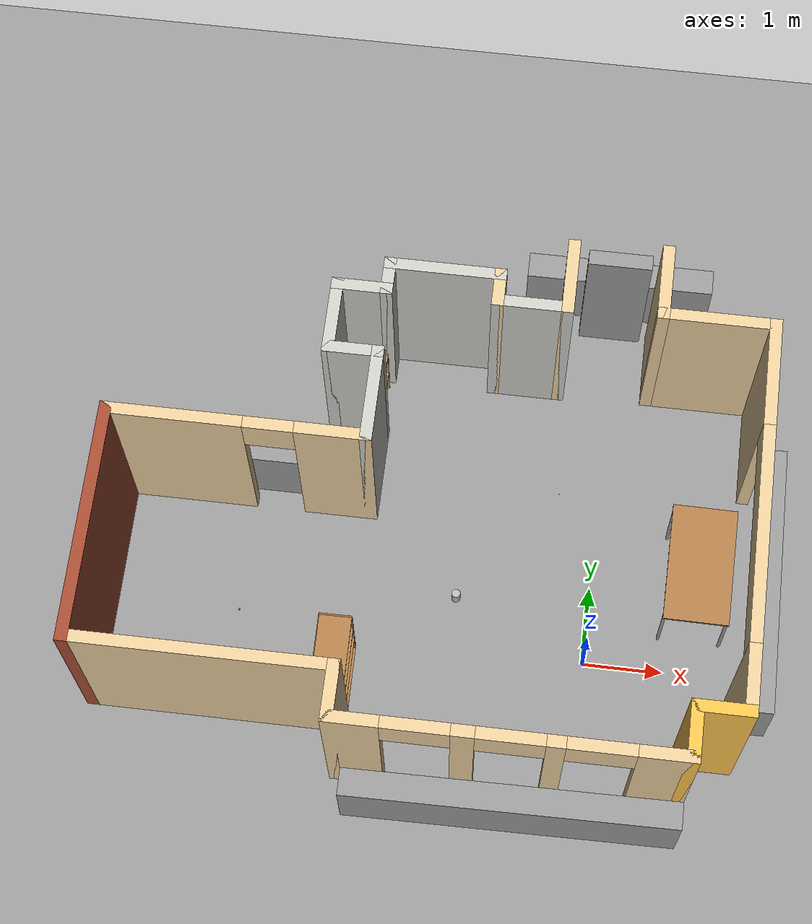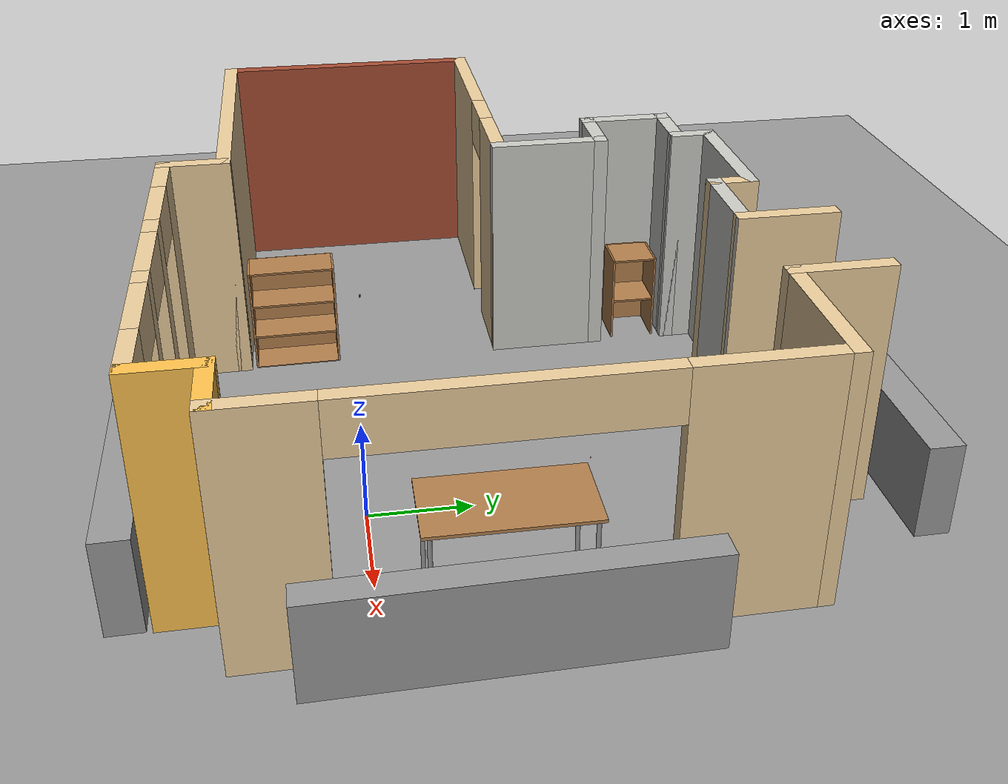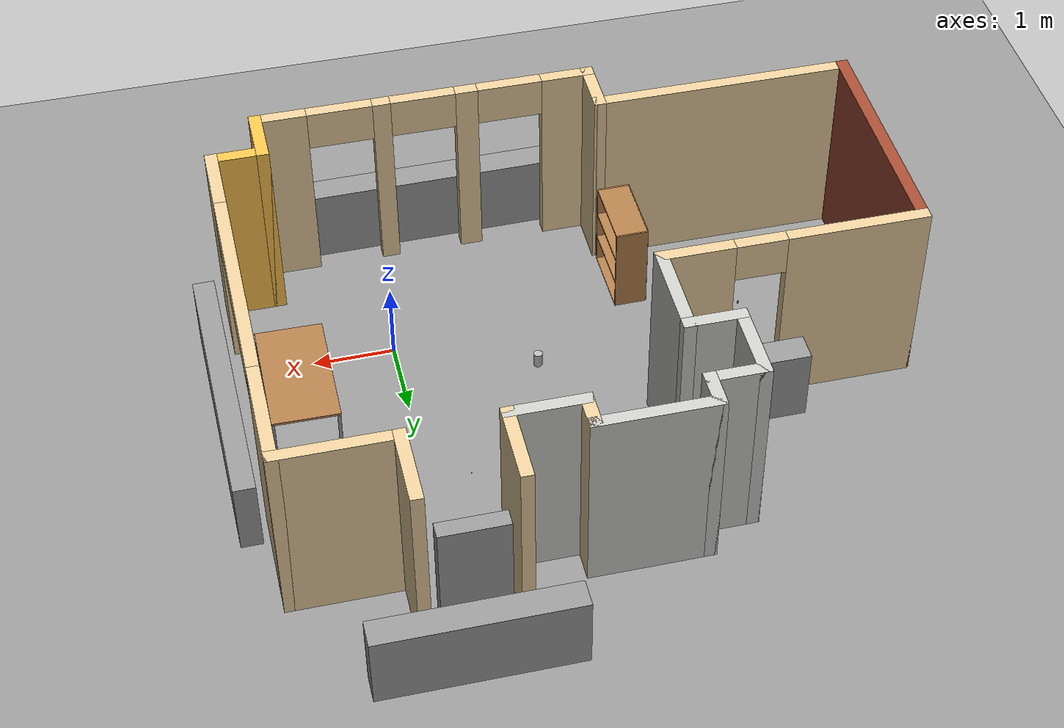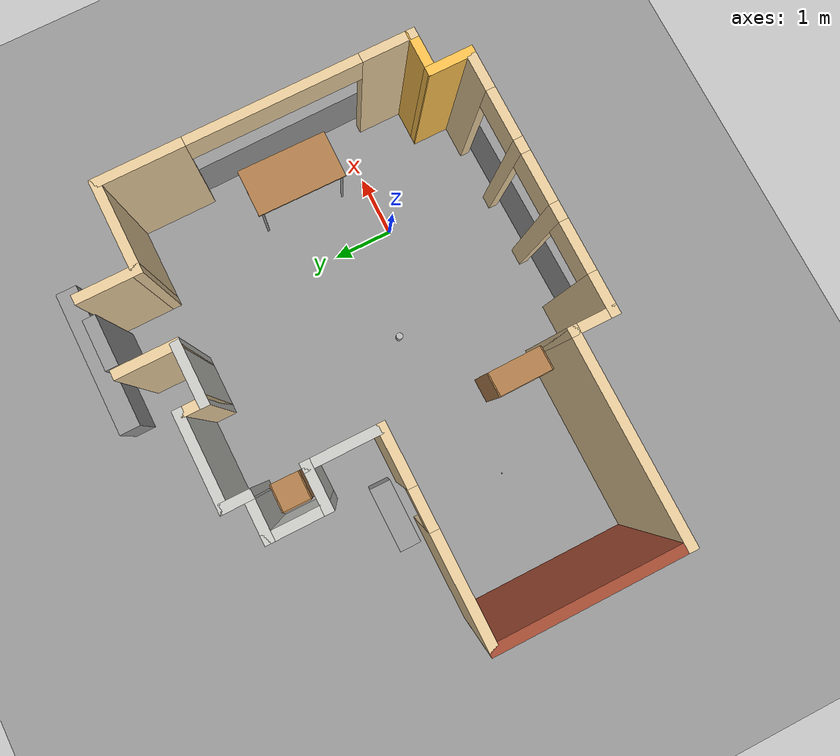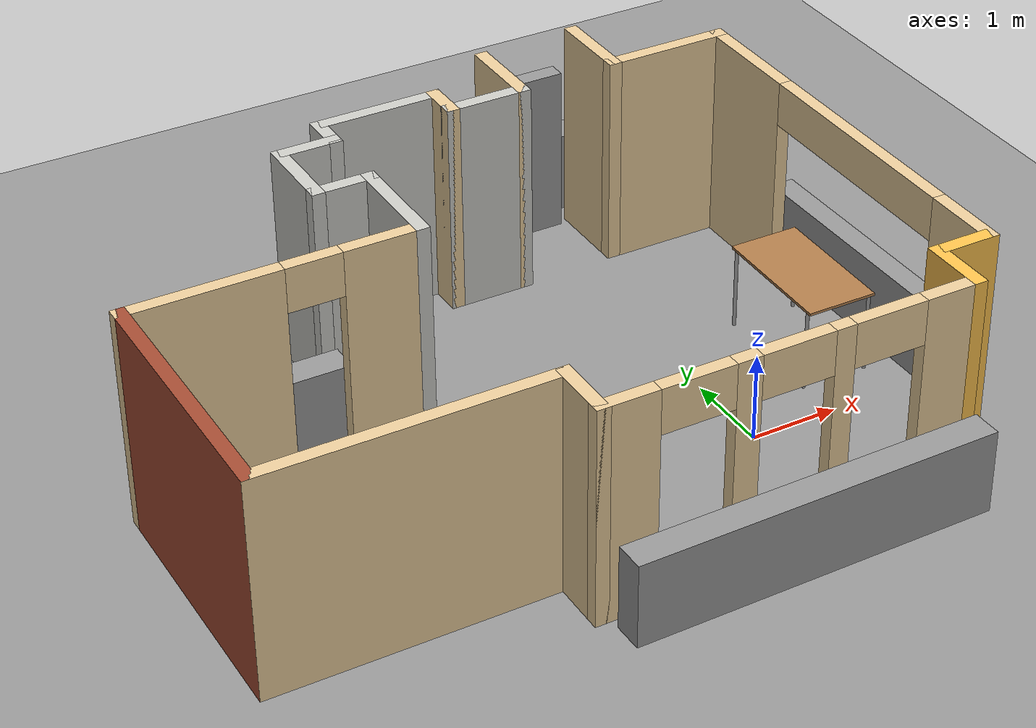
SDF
<sdf version="1.6">
 <world name="default">
  <light name="sun" type="directional">
   <pose>0 0 10 0 -0 0</pose>
   <diffuse>0.8 0.8 0.8 1</diffuse>
   <specular>0.2 0.2 0.2 1</specular>
   <attenuation>
    <range>1000</range>
    <constant>0.9</constant>
    <linear>0.01</linear>
    <quadratic>0.001</quadratic>
   </attenuation>
   <direction>-0.5 0.1 -0.9</direction>
  </light>
  <model name="ground_plane">
   <static>1</static>
   <link name="link">
    <collision name="collision">
     <geometry><plane><normal>0 0 1</normal><size>100 100</size></plane></geometry>
     <surface><friction><ode><mu>100</mu><mu2>50</mu2></ode></friction></surface>
    </collision>
    <visual name="visual">
     <cast_shadows>0</cast_shadows>
     <geometry><plane><normal>0 0 1</normal><size>100 100</size></plane></geometry>
     <material>
      <script><uri>file://media/materials/scripts/gazebo.material</uri><name>Gazebo/Grey</name></script>
     </material>
    </visual>
   </link>
  </model>
  <gravity>0 0 -9.8</gravity>
  <magnetic_field>6e-06 2.3e-05 -4.2e-05</magnetic_field>
  <atmosphere type="adiabatic"/>
  <physics name="default_physics" default="0" type="ode">
   <max_step_size>0.001</max_step_size>
   <real_time_factor>1</real_time_factor>
   <real_time_update_rate>1000</real_time_update_rate>
  </physics>
  <scene><ambient>0.4 0.4 0.4 1</ambient><background>0.7 0.7 0.7 1</background><shadows>1</shadows></scene>
  <spherical_coordinates>
   <surface_model>EARTH_WGS84</surface_model>
   <latitude_deg>0</latitude_deg>
   <longitude_deg>0</longitude_deg>
   <elevation>0</elevation>
   <heading_deg>0</heading_deg>
  </spherical_coordinates>
  <model name="UrbanStudio">
   <pose>-2.05692 1.40421 0 0 -0 0</pose>
   <link name="Door_5">
    <collision name="Door_5_Collision">
     <geometry><box><size>0.79513 0.2 2</size></box></geometry>
     <pose>0 0 1 0 -0 0</pose>
    </collision>
    <visual name="Door_5_Visual">
     <pose>0 0 1 0 -0 0</pose>
     <geometry><box><size>0.79513 0.2 2</size></box></geometry>
     <material>
      <script><uri>file://media/materials/scripts/gazebo.material</uri><name>Gazebo/Grey</name></script>
     </material>
    </visual>
    <pose>1.99566 3.24291 0 0 -0 0</pose>
   </link>
   <link name="Wall_19">
    <collision name="Wall_19_Collision">
     <geometry><box><size>3 0.15 2.5</size></box></geometry>
     <pose>0 0 1.25 0 -0 0</pose>
    </collision>
    <visual name="Wall_19_Visual">
     <pose>0 0 1.25 0 -0 0</pose>
     <geometry><box><size>3 0.15 2.5</size></box></geometry>
     <material>
      <script><uri>file://media/materials/scripts/gazebo.material</uri><name>Gazebo/Bricks</name></script>
      <ambient>0.921569 0.807843 0.615686 1</ambient>
     </material>
     <meta><layer>0</layer></meta>
    </visual>
    <pose>-3.9 -1.125 0 0 0 -1.5708</pose>
   </link>
   <link name="Wall_20">
    <collision name="Wall_20_Collision">
     <geometry><box><size>3.25 0.15 2.5</size></box></geometry>
     <pose>0 0 1.25 0 -0 0</pose>
    </collision>
    <visual name="Wall_20_Visual">
     <pose>0 0 1.25 0 -0 0</pose>
     <geometry><box><size>3.25 0.15 2.5</size></box></geometry>
     <material>
      <script><uri>file://media/materials/scripts/gazebo.material</uri><name>Gazebo/Grey</name></script>
      <ambient>0.921569 0.807843 0.615686 1</ambient>
     </material>
     <meta><layer>0</layer></meta>
    </visual>
    <pose>-2.35 -2.55 0 0 -0 0</pose>
   </link>
   <link name="Wall_21">
    <collision name="Wall_21_Collision">
     <geometry><box><size>0.75 0.15 2.5</size></box></geometry>
     <pose>0 0 1.25 0 -0 0</pose>
    </collision>
    <visual name="Wall_21_Visual">
     <pose>0 0 1.25 0 -0 0</pose>
     <geometry><box><size>0.75 0.15 2.5</size></box></geometry>
     <material>
      <script><uri>file://media/materials/scripts/gazebo.material</uri><name>Gazebo/Grey</name></script>
      <ambient>0.921569 0.807843 0.615686 1</ambient>
     </material>
     <meta><layer>0</layer></meta>
    </visual>
    <pose>-0.8 -2.85 0 0 0 -1.5708</pose>
   </link>
   <link name="Wall_24">
    <pose>1.25 -3.15 0 0 -0 0</pose>
    <visual name="Wall_24_Visual_0">
     <pose>-1.79254 0 1.25 0 -0 0</pose>
     <geometry><box><size>0.664928 0.15 2.5</size></box></geometry>
     <material>
      <script><uri>file://media/materials/scripts/gazebo.material</uri><name>Gazebo/Grey</name></script>
      <ambient>0.921569 0.807843 0.615686 1</ambient>
     </material>
     <meta><layer>0</layer></meta>
    </visual>
    <collision name="Wall_24_Collision_0">
     <geometry><box><size>0.664928 0.15 2.5</size></box></geometry>
     <pose>-1.79254 0 1.25 0 -0 0</pose>
    </collision>
    <visual name="Wall_24_Visual_1">
     <pose>-0.522613 0 1.25 0 -0 0</pose>
     <geometry><box><size>0.274917 0.15 2.5</size></box></geometry>
     <material>
      <script><uri>file://media/materials/scripts/gazebo.material</uri><name>Gazebo/Grey</name></script>
      <ambient>0.921569 0.807843 0.615686 1</ambient>
     </material>
     <meta><layer>0</layer></meta>
    </visual>
    <collision name="Wall_24_Collision_1">
     <geometry><box><size>0.274917 0.15 2.5</size></box></geometry>
     <pose>-0.522613 0 1.25 0 -0 0</pose>
    </collision>
    <visual name="Wall_24_Visual_2">
     <pose>0.526087 0 1.25 0 -0 0</pose>
     <geometry><box><size>0.222482 0.15 2.5</size></box></geometry>
     <material>
      <script><uri>file://media/materials/scripts/gazebo.material</uri><name>Gazebo/Grey</name></script>
      <ambient>0.921569 0.807843 0.615686 1</ambient>
     </material>
     <meta><layer>0</layer></meta>
    </visual>
    <collision name="Wall_24_Collision_2">
     <geometry><box><size>0.222482 0.15 2.5</size></box></geometry>
     <pose>0.526087 0 1.25 0 -0 0</pose>
    </collision>
    <visual name="Wall_24_Visual_3">
     <pose>1.78116 0 1.25 0 -0 0</pose>
     <geometry><box><size>0.687672 0.15 2.5</size></box></geometry>
     <material>
      <script><uri>file://media/materials/scripts/gazebo.material</uri><name>Gazebo/Grey</name></script>
      <ambient>0.921569 0.807843 0.615686 1</ambient>
     </material>
     <meta><layer>0</layer></meta>
    </visual>
    <collision name="Wall_24_Collision_3">
     <geometry><box><size>0.687672 0.15 2.5</size></box></geometry>
     <pose>1.78116 0 1.25 0 -0 0</pose>
    </collision>
    <visual name="Wall_24_Visual_4">
     <pose>-1.06007 0 2.25 0 -0 0</pose>
     <geometry><box><size>0.8 0.15 0.5</size></box></geometry>
     <material>
      <script><uri>file://media/materials/scripts/gazebo.material</uri><name>Gazebo/Grey</name></script>
      <ambient>0.921569 0.807843 0.615686 1</ambient>
     </material>
     <meta><layer>0</layer></meta>
    </visual>
    <collision name="Wall_24_Collision_4">
     <geometry><box><size>0.8 0.15 0.5</size></box></geometry>
     <pose>-1.06007 0 2.25 0 -0 0</pose>
    </collision>
    <visual name="Wall_24_Visual_5">
     <pose>0.014846 0 2.25 0 -0 0</pose>
     <geometry><box><size>0.8 0.15 0.5</size></box></geometry>
     <material>
      <script><uri>file://media/materials/scripts/gazebo.material</uri><name>Gazebo/Grey</name></script>
      <ambient>0.921569 0.807843 0.615686 1</ambient>
     </material>
     <meta><layer>0</layer></meta>
    </visual>
    <collision name="Wall_24_Collision_5">
     <geometry><box><size>0.8 0.15 0.5</size></box></geometry>
     <pose>0.014846 0 2.25 0 -0 0</pose>
    </collision>
    <visual name="Wall_24_Visual_6">
     <pose>1.03733 0 2.25 0 -0 0</pose>
     <geometry><box><size>0.8 0.15 0.5</size></box></geometry>
     <material>
      <script><uri>file://media/materials/scripts/gazebo.material</uri><name>Gazebo/Grey</name></script>
      <ambient>0.921569 0.807843 0.615686 1</ambient>
     </material>
     <meta><layer>0</layer></meta>
    </visual>
    <collision name="Wall_24_Collision_6">
     <geometry><box><size>0.8 0.15 0.5</size></box></geometry>
     <pose>1.03733 0 2.25 0 -0 0</pose>
    </collision>
   </link>
   <link name="Wall_25">
    <collision name="Wall_25_Collision">
     <geometry><box><size>0.75 0.15 2.5</size></box></geometry>
     <pose>0 0 1.25 0 -0 0</pose>
    </collision>
    <visual name="Wall_25_Visual">
     <pose>0 0 1.25 0 -0 0</pose>
     <geometry><box><size>0.75 0.15 2.5</size></box></geometry>
     <material>
      <script><uri>file://media/materials/scripts/gazebo.material</uri><name>Gazebo/Grey</name></script>
      <ambient>1 0.764706 0.305882 1</ambient>
     </material>
     <meta><layer>0</layer></meta>
    </visual>
    <pose>3.3 -2.85 0 0 -0 1.5708</pose>
   </link>
   <link name="Wall_26">
    <collision name="Wall_26_Collision">
     <geometry><box><size>0.75 0.15 2.5</size></box></geometry>
     <pose>0 0 1.25 0 -0 0</pose>
    </collision>
    <visual name="Wall_26_Visual">
     <pose>0 0 1.25 0 -0 0</pose>
     <geometry><box><size>0.75 0.15 2.5</size></box></geometry>
     <material>
      <script><uri>file://media/materials/scripts/gazebo.material</uri><name>Gazebo/Grey</name></script>
      <ambient>1 0.764706 0.305882 1</ambient>
     </material>
     <meta><layer>0</layer></meta>
    </visual>
    <pose>3.6 -2.55 0 0 -0 0</pose>
   </link>
   <link name="Wall_27">
    <pose>3.9 -0.125 0 0 -0 1.5708</pose>
    <visual name="Wall_27_Visual_0">
     <pose>-2.06007 0 1.25 0 -0 0</pose>
     <geometry><box><size>0.879852 0.15 2.5</size></box></geometry>
     <material>
      <script><uri>file://media/materials/scripts/gazebo.material</uri><name>Gazebo/Grey</name></script>
      <ambient>0.921569 0.807843 0.615686 1</ambient>
     </material>
     <meta><layer>0</layer></meta>
    </visual>
    <collision name="Wall_27_Collision_0">
     <geometry><box><size>0.879852 0.15 2.5</size></box></geometry>
     <pose>-2.06007 0 1.25 0 -0 0</pose>
    </collision>
    <visual name="Wall_27_Visual_1">
     <pose>1.80014 0 1.25 0 -0 0</pose>
     <geometry><box><size>1.39972 0.15 2.5</size></box></geometry>
     <material>
      <script><uri>file://media/materials/scripts/gazebo.material</uri><name>Gazebo/Grey</name></script>
      <ambient>0.921569 0.807843 0.615686 1</ambient>
     </material>
     <meta><layer>0</layer></meta>
    </visual>
    <collision name="Wall_27_Collision_1">
     <geometry><box><size>1.39972 0.15 2.5</size></box></geometry>
     <pose>1.80014 0 1.25 0 -0 0</pose>
    </collision>
    <visual name="Wall_27_Visual_2">
     <pose>-0.259932 0 2.25 0 -0 0</pose>
     <geometry><box><size>2.72043 0.15 0.5</size></box></geometry>
     <material>
      <script><uri>file://media/materials/scripts/gazebo.material</uri><name>Gazebo/Grey</name></script>
      <ambient>0.921569 0.807843 0.615686 1</ambient>
     </material>
     <meta><layer>0</layer></meta>
    </visual>
    <collision name="Wall_27_Collision_2">
     <geometry><box><size>2.72043 0.15 0.5</size></box></geometry>
     <pose>-0.259932 0 2.25 0 -0 0</pose>
    </collision>
   </link>
   <link name="Wall_28">
    <collision name="Wall_28_Collision">
     <geometry><box><size>1.5 0.15 2.5</size></box></geometry>
     <pose>0 0 1.25 0 -0 0</pose>
    </collision>
    <visual name="Wall_28_Visual">
     <pose>0 0 1.25 0 -0 0</pose>
     <geometry><box><size>1.5 0.15 2.5</size></box></geometry>
     <material>
      <script><uri>file://media/materials/scripts/gazebo.material</uri><name>Gazebo/Grey</name></script>
      <ambient>0.921569 0.807843 0.615686 1</ambient>
     </material>
     <meta><layer>0</layer></meta>
    </visual>
    <pose>3.225 2.3 0 0 -0 3.14159</pose>
   </link>
   <link name="Wall_29">
    <collision name="Wall_29_Collision">
     <geometry><box><size>1 0.15 2.5</size></box></geometry>
     <pose>0 0 1.25 0 -0 0</pose>
    </collision>
    <visual name="Wall_29_Visual">
     <pose>0 0 1.25 0 -0 0</pose>
     <geometry><box><size>1 0.15 2.5</size></box></geometry>
     <material>
      <script><uri>file://media/materials/scripts/gazebo.material</uri><name>Gazebo/Grey</name></script>
      <ambient>0.921569 0.807843 0.615686 1</ambient>
     </material>
     <meta><layer>0</layer></meta>
    </visual>
    <pose>2.55 2.725 0 0 -0 1.5708</pose>
   </link>
   <link name="Wall_42">
    <pose>-2.35 0.3 0 0 -0 0</pose>
    <visual name="Wall_42_Visual_0">
     <pose>-0.771993 0 1.25 0 -0 0</pose>
     <geometry><box><size>1.70601 0.15 2.5</size></box></geometry>
     <material>
      <script><uri>file://media/materials/scripts/gazebo.material</uri><name>Gazebo/Grey</name></script>
      <ambient>0.921569 0.807843 0.615686 1</ambient>
     </material>
     <meta><layer>0</layer></meta>
    </visual>
    <collision name="Wall_42_Collision_0">
     <geometry><box><size>1.70601 0.15 2.5</size></box></geometry>
     <pose>-0.771993 0 1.25 0 -0 0</pose>
    </collision>
    <visual name="Wall_42_Visual_1">
     <pose>1.15881 0 1.25 0 -0 0</pose>
     <geometry><box><size>0.932379 0.15 2.5</size></box></geometry>
     <material>
      <script><uri>file://media/materials/scripts/gazebo.material</uri><name>Gazebo/Grey</name></script>
      <ambient>0.921569 0.807843 0.615686 1</ambient>
     </material>
     <meta><layer>0</layer></meta>
    </visual>
    <collision name="Wall_42_Collision_1">
     <geometry><box><size>0.932379 0.15 2.5</size></box></geometry>
     <pose>1.15881 0 1.25 0 -0 0</pose>
    </collision>
    <visual name="Wall_42_Visual_2">
     <pose>0.386817 0 2.25 0 -0 0</pose>
     <geometry><box><size>0.611608 0.15 0.5</size></box></geometry>
     <material>
      <script><uri>file://media/materials/scripts/gazebo.material</uri><name>Gazebo/Grey</name></script>
      <ambient>0.921569 0.807843 0.615686 1</ambient>
     </material>
     <meta><layer>0</layer></meta>
    </visual>
    <collision name="Wall_42_Collision_2">
     <geometry><box><size>0.611608 0.15 0.5</size></box></geometry>
     <pose>0.386817 0 2.25 0 -0 0</pose>
    </collision>
   </link>
   <link name="Wall_44">
    <collision name="Wall_44_Collision">
     <geometry><box><size>1.25 0.15 2.5</size></box></geometry>
     <pose>0 0 1.25 0 -0 0</pose>
    </collision>
    <visual name="Wall_44_Visual">
     <pose>0 0 1.25 0 -0 0</pose>
     <geometry><box><size>1.25 0.15 2.5</size></box></geometry>
     <material>
      <script><uri>file://media/materials/scripts/gazebo.material</uri><name>Gazebo/CeilingTiled</name></script>
      <ambient>0.921569 0.807843 0.615686 1</ambient>
     </material>
     <meta><layer>0</layer></meta>
    </visual>
    <pose>-0.8 0.85 0 0 -0 1.5708</pose>
   </link>
   <link name="Wall_45">
    <collision name="Wall_45_Collision">
     <geometry><box><size>0.75 0.15 2.5</size></box></geometry>
     <pose>0 0 1.25 0 -0 0</pose>
    </collision>
    <visual name="Wall_45_Visual">
     <pose>0 0 1.25 0 -0 0</pose>
     <geometry><box><size>0.75 0.15 2.5</size></box></geometry>
     <material>
      <script><uri>file://media/materials/scripts/gazebo.material</uri><name>Gazebo/CeilingTiled</name></script>
      <ambient>0.921569 0.807843 0.615686 1</ambient>
     </material>
     <meta><layer>0</layer></meta>
    </visual>
    <pose>-1.1 1.4 0 0 -0 3.14159</pose>
   </link>
   <link name="Wall_46">
    <collision name="Wall_46_Collision">
     <geometry><box><size>1 0.15 2.5</size></box></geometry>
     <pose>0 0 1.25 0 -0 0</pose>
    </collision>
    <visual name="Wall_46_Visual">
     <pose>0 0 1.25 0 -0 0</pose>
     <geometry><box><size>1 0.15 2.5</size></box></geometry>
     <material>
      <script><uri>file://media/materials/scripts/gazebo.material</uri><name>Gazebo/CeilingTiled</name></script>
      <ambient>0.921569 0.807843 0.615686 1</ambient>
     </material>
     <meta><layer>0</layer></meta>
    </visual>
    <pose>-1.4 1.825 0 0 -0 1.5708</pose>
   </link>
   <link name="Wall_48">
    <collision name="Wall_48_Collision">
     <geometry><box><size>0.75 0.15 2.5</size></box></geometry>
     <pose>0 0 1.25 0 -0 0</pose>
    </collision>
    <visual name="Wall_48_Visual">
     <pose>0 0 1.25 0 -0 0</pose>
     <geometry><box><size>0.75 0.15 2.5</size></box></geometry>
     <material>
      <script><uri>file://media/materials/scripts/gazebo.material</uri><name>Gazebo/CeilingTiled</name></script>
      <ambient>0.921569 0.807843 0.615686 1</ambient>
     </material>
     <meta><layer>0</layer></meta>
    </visual>
    <pose>-1.1 2.25 0 0 -0 0</pose>
   </link>
   <link name="Wall_51">
    <collision name="Wall_51_Collision">
     <geometry><box><size>0.5 0.15 2.5</size></box></geometry>
     <pose>0 0 1.25 0 -0 0</pose>
    </collision>
    <visual name="Wall_51_Visual">
     <pose>0 0 1.25 0 -0 0</pose>
     <geometry><box><size>0.5 0.15 2.5</size></box></geometry>
     <material>
      <script><uri>file://media/materials/scripts/gazebo.material</uri><name>Gazebo/CeilingTiled</name></script>
      <ambient>0.921569 0.807843 0.615686 1</ambient>
     </material>
     <meta><layer>0</layer></meta>
    </visual>
    <pose>-0.8 2.425 0 0 -0 1.5708</pose>
   </link>
   <link name="Wall_52">
    <collision name="Wall_52_Collision">
     <geometry><box><size>1.5 0.15 2.5</size></box></geometry>
     <pose>0 0 1.25 0 -0 0</pose>
    </collision>
    <visual name="Wall_52_Visual">
     <pose>0 0 1.25 0 -0 0</pose>
     <geometry><box><size>1.5 0.15 2.5</size></box></geometry>
     <material>
      <script><uri>file://media/materials/scripts/gazebo.material</uri><name>Gazebo/CeilingTiled</name></script>
      <ambient>0.921569 0.807843 0.615686 1</ambient>
     </material>
     <meta><layer>0</layer></meta>
    </visual>
    <pose>-0.125 2.6 0 0 -0 0</pose>
   </link>
   <link name="Wall_53">
    <collision name="Wall_53_Collision">
     <geometry><box><size>0.5 0.15 2.5</size></box></geometry>
     <pose>0 0 1.25 0 -0 0</pose>
    </collision>
    <visual name="Wall_53_Visual">
     <pose>0 0 1.25 0 -0 0</pose>
     <geometry><box><size>0.5 0.15 2.5</size></box></geometry>
     <material>
      <script><uri>file://media/materials/scripts/gazebo.material</uri><name>Gazebo/Grey</name></script>
      <ambient>0.921569 0.807843 0.615686 1</ambient>
     </material>
     <meta><layer>0</layer></meta>
    </visual>
    <pose>0.55 2.425 0 0 0 -1.5708</pose>
   </link>
   <link name="Wall_54">
    <collision name="Wall_54_Collision">
     <geometry><box><size>1 0.15 2.5</size></box></geometry>
     <pose>0 0 1.25 0 -0 0</pose>
    </collision>
    <visual name="Wall_54_Visual">
     <pose>0 0 1.25 0 -0 0</pose>
     <geometry><box><size>1 0.15 2.5</size></box></geometry>
     <material>
      <script><uri>file://media/materials/scripts/gazebo.material</uri><name>Gazebo/CeilingTiled</name></script>
      <ambient>0.921569 0.807843 0.615686 1</ambient>
     </material>
     <meta><layer>0</layer></meta>
    </visual>
    <pose>0.975 2.25 0 0 -0 0</pose>
   </link>
   <link name="Wall_55">
    <collision name="Wall_55_Collision">
     <geometry><box><size>1 0.15 2.5</size></box></geometry>
     <pose>0 0 1.25 0 -0 0</pose>
    </collision>
    <visual name="Wall_55_Visual">
     <pose>0 0 1.25 0 -0 0</pose>
     <geometry><box><size>1 0.15 2.5</size></box></geometry>
     <material>
      <script><uri>file://media/materials/scripts/gazebo.material</uri><name>Gazebo/Grey</name></script>
      <ambient>0.921569 0.807843 0.615686 1</ambient>
     </material>
     <meta><layer>0</layer></meta>
    </visual>
    <pose>1.4 2.675 0 0 -0 1.5708</pose>
   </link>
   <static>1</static>
  </model>
  <model name="ground_plane_0">
   <static>1</static>
   <link name="link">
    <collision name="collision">
     <geometry><plane><normal>0 0 1</normal><size>100 100</size></plane></geometry>
     <surface>
      <contact><collide_bitmask>65535</collide_bitmask></contact>
      <friction><ode><mu>100</mu><mu2>50</mu2></ode></friction>
     </surface>
    </collision>
    <visual name="visual">
     <cast_shadows>0</cast_shadows>
     <geometry><plane><normal>0 0 1</normal><size>100 100</size></plane></geometry>
     <material>
      <script><uri>file://media/materials/scripts/gazebo.material</uri><name>Gazebo/Grey</name></script>
     </material>
    </visual>
   </link>
   <pose>0.870453 0.262536 0 0 -0 0</pose>
  </model>
  <model name="table">
   <static>1</static>
   <link name="link">
    <collision name="surface">
     <pose>0 0 1 0 -0 0</pose>
     <geometry><box><size>1.5 0.8 0.03</size></box></geometry>
     <surface><friction><ode><mu>0.6</mu><mu2>0.6</mu2></ode></friction></surface>
    </collision>
    <visual name="visual1">
     <pose>0 0 1 0 -0 0</pose>
     <geometry><box><size>1.5 0.8 0.03</size></box></geometry>
     <material>
      <script><uri>file://media/materials/scripts/gazebo.material</uri><name>Gazebo/Wood</name></script>
     </material>
    </visual>
    <collision name="front_left_leg">
     <pose>0.68 0.38 0.5 0 -0 0</pose>
     <geometry><cylinder><radius>0.02</radius><length>1</length></cylinder></geometry>
    </collision>
    <visual name="front_left_leg">
     <pose>0.68 0.38 0.5 0 -0 0</pose>
     <geometry><cylinder><radius>0.02</radius><length>1</length></cylinder></geometry>
     <material>
      <script><uri>file://media/materials/scripts/gazebo.material</uri><name>Gazebo/Grey</name></script>
     </material>
    </visual>
    <collision name="front_right_leg">
     <pose>0.68 -0.38 0.5 0 -0 0</pose>
     <geometry><cylinder><radius>0.02</radius><length>1</length></cylinder></geometry>
    </collision>
    <visual name="front_right_leg">
     <pose>0.68 -0.38 0.5 0 -0 0</pose>
     <geometry><cylinder><radius>0.02</radius><length>1</length></cylinder></geometry>
     <material>
      <script><uri>file://media/materials/scripts/gazebo.material</uri><name>Gazebo/Grey</name></script>
     </material>
    </visual>
    <collision name="back_right_leg">
     <pose>-0.68 -0.38 0.5 0 -0 0</pose>
     <geometry><cylinder><radius>0.02</radius><length>1</length></cylinder></geometry>
    </collision>
    <visual name="back_right_leg">
     <pose>-0.68 -0.38 0.5 0 -0 0</pose>
     <geometry><cylinder><radius>0.02</radius><length>1</length></cylinder></geometry>
     <material>
      <script><uri>file://media/materials/scripts/gazebo.material</uri><name>Gazebo/Grey</name></script>
     </material>
    </visual>
    <collision name="back_left_leg">
     <pose>-0.68 0.38 0.5 0 -0 0</pose>
     <geometry><cylinder><radius>0.02</radius><length>1</length></cylinder></geometry>
    </collision>
    <visual name="back_left_leg">
     <pose>-0.68 0.38 0.5 0 -0 0</pose>
     <geometry><cylinder><radius>0.02</radius><length>1</length></cylinder></geometry>
     <material>
      <script><uri>file://media/materials/scripts/gazebo.material</uri><name>Gazebo/Grey</name></script>
     </material>
    </visual>
   </link>
   <pose>1.29513 1.11074 0.001723 -0.002851 -3.1e-05 1.55977</pose>
  </model>
  <model name="bookshelf">
   <static>1</static>
   <link name="link">
    <inertial><mass>1</mass></inertial>
    <collision name="back">
     <pose>0 0.005 0.6 0 -0 0</pose>
     <geometry><box><size>0.9 0.01 1.2</size></box></geometry>
    </collision>
    <visual name="visual1">
     <pose>0 0.005 0.6 0 -0 0</pose>
     <geometry><box><size>0.9 0.01 1.2</size></box></geometry>
     <material>
      <script><uri>file://media/materials/scripts/gazebo.material</uri><name>Gazebo/Wood</name></script>
     </material>
    </visual>
    <collision name="left_side">
     <pose>0.45 -0.195 0.6 0 -0 0</pose>
     <geometry><box><size>0.02 0.4 1.2</size></box></geometry>
    </collision>
    <visual name="visual2">
     <pose>0.45 -0.195 0.6 0 -0 0</pose>
     <geometry><box><size>0.02 0.4 1.2</size></box></geometry>
     <material>
      <script><uri>file://media/materials/scripts/gazebo.material</uri><name>Gazebo/Wood</name></script>
     </material>
    </visual>
    <collision name="right_side">
     <pose>-0.45 -0.195 0.6 0 -0 0</pose>
     <geometry><box><size>0.02 0.4 1.2</size></box></geometry>
    </collision>
    <visual name="visual3">
     <pose>-0.45 -0.195 0.6 0 -0 0</pose>
     <geometry><box><size>0.02 0.4 1.2</size></box></geometry>
     <material>
      <script><uri>file://media/materials/scripts/gazebo.material</uri><name>Gazebo/Wood</name></script>
     </material>
    </visual>
    <collision name="bottom">
     <pose>0 -0.195 0.03 0 -0 0</pose>
     <geometry><box><size>0.88 0.4 0.06</size></box></geometry>
    </collision>
    <visual name="visual4">
     <pose>0 -0.195 0.03 0 -0 0</pose>
     <geometry><box><size>0.88 0.4 0.06</size></box></geometry>
     <material>
      <script><uri>file://media/materials/scripts/gazebo.material</uri><name>Gazebo/Wood</name></script>
     </material>
    </visual>
    <collision name="top">
     <pose>0 -0.195 1.19 0 -0 0</pose>
     <geometry><box><size>0.88 0.4 0.02</size></box></geometry>
    </collision>
    <visual name="visual5">
     <pose>0 -0.195 1.19 0 -0 0</pose>
     <geometry><box><size>0.88 0.4 0.02</size></box></geometry>
     <material>
      <script><uri>file://media/materials/scripts/gazebo.material</uri><name>Gazebo/Wood</name></script>
     </material>
    </visual>
    <collision name="low_shelf">
     <pose>0 -0.195 0.43 0 -0 0</pose>
     <geometry><box><size>0.88 0.4 0.02</size></box></geometry>
    </collision>
    <visual name="visual6">
     <pose>0 -0.195 0.43 0 -0 0</pose>
     <geometry><box><size>0.88 0.4 0.02</size></box></geometry>
     <material>
      <script><uri>file://media/materials/scripts/gazebo.material</uri><name>Gazebo/Wood</name></script>
     </material>
    </visual>
    <collision name="high_shelf">
     <pose>0 -0.195 0.8 0 -0 0</pose>
     <geometry><box><size>0.88 0.4 0.02</size></box></geometry>
    </collision>
    <visual name="visual7">
     <pose>0 -0.195 0.8 0 -0 0</pose>
     <geometry><box><size>0.88 0.4 0.02</size></box></geometry>
     <material>
      <script><uri>file://media/materials/scripts/gazebo.material</uri><name>Gazebo/Wood</name></script>
     </material>
    </visual>
   </link>
   <pose>-3.22278 -0.567812 0 0 -0 1.58217</pose>
  </model>
  <model name="beer">
   <link name="link">
    <pose>0 0 0.115 0 -0 0</pose>
    <inertial>
     <mass>0.39</mass>
     <inertia><ixx>0.00058</ixx><ixy>0</ixy><ixz>0</ixz><iyy>0.00058</iyy><iyz>0</iyz><izz>0.00019</izz></inertia>
    </inertial>
    <collision name="collision">
     <geometry><cylinder><radius>0.055</radius><length>0.23</length></cylinder></geometry>
    </collision>
    <visual name="visual">
     <geometry><cylinder><radius>0.055</radius><length>0.23</length></cylinder></geometry>
     <material>
      <script>
       <uri>model://beer/materials/scripts</uri>
       <uri>model://beer/materials/textures</uri>
       <name>Beer/Diffuse</name>
      </script>
     </material>
    </visual>
   </link>
   <pose>-1.66292 0.676531 -8e-06 0 -0 1e-05</pose>
  </model>
  <model name="cabinet">
   <static>1</static>
   <link name="cabinet_bottom_plate">
    <inertial>
     <pose>0 0 -1 0 -0 0</pose>
     <inertia><ixx>2.05</ixx><ixy>0</ixy><ixz>0</ixz><iyy>2.05</iyy><iyz>0</iyz><izz>2.05</izz></inertia>
     <mass>25</mass>
    </inertial>
    <collision name="cabinet_bottom_plate_geom">
     <pose>0 0 0.01 0 -0 0</pose>
     <geometry><box><size>0.45 0.45 0.02</size></box></geometry>
    </collision>
    <visual name="cabinet_bottom_plate_geom_visual">
     <pose>0 0 0.01 0 -0 0</pose>
     <geometry><box><size>0.45 0.45 0.02</size></box></geometry>
     <material>
      <script><uri>file://media/materials/scripts/gazebo.material</uri><name>Gazebo/Wood</name></script>
     </material>
    </visual>
    <collision name="cabinet_bottom_plate_geom_cabinet_back_plate">
     <pose>0.235 0 0.51 0 -0 0</pose>
     <geometry><box><size>0.02 0.45 1.02</size></box></geometry>
    </collision>
    <visual name="cabinet_bottom_plate_geom_cabinet_back_plate_visual">
     <pose>0.235 0 0.51 0 -0 0</pose>
     <geometry><box><size>0.02 0.45 1.02</size></box></geometry>
     <material>
      <script><uri>file://media/materials/scripts/gazebo.material</uri><name>Gazebo/Wood</name></script>
     </material>
    </visual>
    <collision name="cabinet_bottom_plate_geom_cabinet_left_plate">
     <pose>0 0.235 0.51 0 -0 0</pose>
     <geometry><box><size>0.45 0.02 1.02</size></box></geometry>
    </collision>
    <visual name="cabinet_bottom_plate_geom_cabinet_left_plate_visual">
     <pose>0 0.235 0.51 0 -0 0</pose>
     <geometry><box><size>0.45 0.02 1.02</size></box></geometry>
     <material>
      <script><uri>file://media/materials/scripts/gazebo.material</uri><name>Gazebo/Wood</name></script>
     </material>
    </visual>
    <collision name="cabinet_bottom_plate_geom_cabinet_middle_plate">
     <pose>0 0 0.51 0 -0 0</pose>
     <geometry><box><size>0.45 0.45 0.02</size></box></geometry>
    </collision>
    <visual name="cabinet_bottom_plate_geom_cabinet_middle_plate_visual">
     <pose>0 0 0.51 0 -0 0</pose>
     <geometry><box><size>0.45 0.45 0.02</size></box></geometry>
     <material>
      <script><uri>file://media/materials/scripts/gazebo.material</uri><name>Gazebo/Wood</name></script>
     </material>
    </visual>
    <collision name="cabinet_bottom_plate_geom_cabinet_right_plate">
     <pose>0 -0.235 0.51 0 -0 0</pose>
     <geometry><box><size>0.45 0.02 1.02</size></box></geometry>
    </collision>
    <visual name="cabinet_bottom_plate_geom_cabinet_right_plate_visual">
     <pose>0 -0.235 0.51 0 -0 0</pose>
     <geometry><box><size>0.45 0.02 1.02</size></box></geometry>
     <material>
      <script><uri>file://media/materials/scripts/gazebo.material</uri><name>Gazebo/Wood</name></script>
     </material>
    </visual>
    <collision name="cabinet_bottom_plate_geom_cabinet_top_plate">
     <pose>0 0 1.01 0 -0 0</pose>
     <geometry><box><size>0.45 0.45 0.02</size></box></geometry>
    </collision>
    <visual name="cabinet_bottom_plate_geom_cabinet_top_plate_visual">
     <pose>0 0 1.01 0 -0 0</pose>
     <geometry><box><size>0.45 0.45 0.02</size></box></geometry>
     <material>
      <script><uri>file://media/materials/scripts/gazebo.material</uri><name>Gazebo/Wood</name></script>
     </material>
    </visual>
   </link>
   <pose>-3.08061 3.26434 0 0 -0 3.13064</pose>
  </model>
  <model name="unit_box">
   <pose>-4.08254 2.0446 0.5 0 -0 0.00017</pose>
   <link name="link">
    <inertial>
     <mass>1</mass>
     <inertia>
      <ixx>0.166667</ixx>
      <ixy>0</ixy>
      <ixz>0</ixz>
      <iyy>0.166667</iyy>
      <iyz>0</iyz>
      <izz>0.166667</izz>
     </inertia>
    </inertial>
    <collision name="collision"><geometry><box><size>1 0.33747 1</size></box></geometry></collision>
    <visual name="visual">
     <geometry><box><size>1 0.33747 1</size></box></geometry>
     <material>
      <script><name>Gazebo/Grey</name><uri>file://media/materials/scripts/gazebo.material</uri></script>
     </material>
    </visual>
   </link>
  </model>
  <model name="unit_box_clone">
   <pose>-0.720868 -2.06712 0.499213 1e-05 0.00039 0.011186</pose>
   <link name="link">
    <inertial>
     <mass>1</mass>
     <inertia>
      <ixx>0.166667</ixx>
      <ixy>0</ixy>
      <ixz>0</ixz>
      <iyy>0.166667</iyy>
      <iyz>0</iyz>
      <izz>0.166667</izz>
     </inertia>
    </inertial>
    <collision name="collision"><geometry><box><size>4.05008 0.33747 1</size></box></geometry></collision>
    <visual name="visual">
     <geometry><box><size>4.05008 0.33747 1</size></box></geometry>
     <material>
      <script><name>Gazebo/Grey</name><uri>file://media/materials/scripts/gazebo.material</uri></script>
     </material>
    </visual>
   </link>
  </model>
  <model name="unit_box_0">
   <pose>2.14549 1.03118 0.499653 -0.000203 7e-06 0.009347</pose>
   <link name="link">
    <inertial>
     <mass>1</mass>
     <inertia>
      <ixx>0.166667</ixx>
      <ixy>0</ixy>
      <ixz>0</ixz>
      <iyy>0.166667</iyy>
      <iyz>0</iyz>
      <izz>0.166667</izz>
     </inertia>
    </inertial>
    <collision name="collision"><geometry><box><size>0.262257 3.42943 1</size></box></geometry></collision>
    <visual name="visual">
     <geometry><box><size>0.262257 3.42943 1</size></box></geometry>
     <material>
      <script><name>Gazebo/Grey</name><uri>file://media/materials/scripts/gazebo.material</uri></script>
     </material>
    </visual>
   </link>
  </model>
  <model name="unit_box_clone_clone">
   <pose>-0.013787 5.01468 0.499953 -1e-06 3.9e-05 -0.000824</pose>
   <link name="link">
    <inertial>
     <mass>1</mass>
     <inertia>
      <ixx>0.166667</ixx>
      <ixy>0</ixy>
      <ixz>0</ixz>
      <iyy>0.166667</iyy>
      <iyz>0</iyz>
      <izz>0.166667</izz>
     </inertia>
    </inertial>
    <collision name="collision"><geometry><box><size>2.3818 0.33747 1</size></box></geometry></collision>
    <visual name="visual">
     <geometry><box><size>2.3818 0.33747 1</size></box></geometry>
     <material>
      <script><name>Gazebo/Grey</name><uri>file://media/materials/scripts/gazebo.material</uri></script>
     </material>
    </visual>
   </link>
  </model>
  <model name="metal_peg_board">
   <link name="wooden_board::base">
    <pose>0 0 0.00523 0 -0 0</pose>
    <inertial>
     <mass>0.2765</mass>
     <inertia>
      <ixx>0.0025148</ixx>
      <ixy>0</ixy>
      <ixz>0</ixz>
      <iyy>0.00024037</iyy>
      <iyz>0</iyz>
      <izz>0.00275013</izz>
     </inertia>
    </inertial>
    <collision name="collision">
     <geometry><box><size>0.1016 0.3302 0.01046</size></box></geometry>
     <surface>
      <contact>
       <poissons_ratio>0.347</poissons_ratio>
       <elastic_modulus>8.8e+09</elastic_modulus>
       <ode><kp>100000</kp><kd>100</kd><max_vel>100</max_vel><min_depth>0.001</min_depth></ode>
      </contact>
      <friction>
       <torsional>
        <coefficient>1</coefficient>
        <use_patch_radius>0</use_patch_radius>
        <surface_radius>0.01</surface_radius>
       </torsional>
      </friction>
     </surface>
    </collision>
    <visual name="visual">
     <geometry><box><size>0.1016 0.3302 0.01046</size></box></geometry>
     <material>
      <script><uri>file://media/materials/scripts/gazebo.material</uri><name>Gazebo/Wood</name></script>
     </material>
    </visual>
    <visual name="tee_nut_1">
     <pose>0 -0.116 0 0 -0 0</pose>
     <geometry><cylinder><radius>0.00635</radius><length>0.0105646</length></cylinder></geometry>
     <material>
      <script><uri>file://media/materials/scripts/gazebo.material</uri><name>Gazebo/Grey</name></script>
     </material>
    </visual>
    <visual name="tee_nut_2">
     <pose>0 -0.038 0 0 -0 0</pose>
     <geometry><cylinder><radius>0.00635</radius><length>0.0105646</length></cylinder></geometry>
     <material>
      <script><uri>file://media/materials/scripts/gazebo.material</uri><name>Gazebo/Grey</name></script>
     </material>
    </visual>
    <visual name="tee_nut_3">
     <pose>0 0.038 0 0 -0 0</pose>
     <geometry><cylinder><radius>0.00635</radius><length>0.0105646</length></cylinder></geometry>
     <material>
      <script><uri>file://media/materials/scripts/gazebo.material</uri><name>Gazebo/Grey</name></script>
     </material>
    </visual>
    <visual name="tee_nut_4">
     <pose>0 0.116 0 0 -0 0</pose>
     <geometry><cylinder><radius>0.00635</radius><length>0.0105646</length></cylinder></geometry>
     <material>
      <script><uri>file://media/materials/scripts/gazebo.material</uri><name>Gazebo/Grey</name></script>
     </material>
    </visual>
   </link>
   <link name="peg::link">
    <pose>0 0.116 0.031 0 -0 0</pose>
    <inertial>
     <mass>0.0121</mass>
     <inertia>
      <ixx>3.90898e-06</ixx>
      <ixy>0</ixy>
      <ixz>0</ixz>
      <iyy>3.90898e-06</iyy>
      <iyz>0</iyz>
      <izz>6.58845e-08</izz>
     </inertia>
    </inertial>
    <collision name="collision">
     <geometry><cylinder><radius>0.0033</radius><length>0.062</length></cylinder></geometry>
     <surface>
      <contact>
       <poissons_ratio>0.305</poissons_ratio>
       <elastic_modulus>2e+11</elastic_modulus>
       <ode><kp>100000</kp><kd>100</kd><max_vel>100</max_vel><min_depth>0.001</min_depth></ode>
      </contact>
      <friction>
       <torsional>
        <coefficient>1</coefficient>
        <use_patch_radius>0</use_patch_radius>
        <surface_radius>0.01</surface_radius>
       </torsional>
      </friction>
     </surface>
    </collision>
    <visual name="visual">
     <geometry><cylinder><radius>0.0033</radius><length>0.062</length></cylinder></geometry>
     <material>
      <script><uri>file://media/materials/scripts/gazebo.material</uri><name>Gazebo/Grey</name></script>
     </material>
    </visual>
   </link>
   <joint name="board_peg" type="revolute">
    <parent>wooden_board::base</parent>
    <child>peg::link</child>
    <axis>
     <xyz>0 0 1</xyz>
     <limit><upper>0</upper><lower>0</lower></limit>
     <use_parent_model_frame>0</use_parent_model_frame>
     <dynamics><spring_reference>0</spring_reference><spring_stiffness>0</spring_stiffness></dynamics>
    </axis>
   </joint>
   <pose>-0.504475 2.12659 -0.001003 2e-06 -0 2e-06</pose>
  </model>
  <model name="wooden_peg">
   <link name="link">
    <pose>0 0 0.04 0 -0 0</pose>
    <inertial>
     <mass>0.0175</mass>
     <inertia>
      <ixx>9.74923e-06</ixx>
      <ixy>0</ixy>
      <ixz>0</ixz>
      <iyy>9.74923e-06</iyy>
      <iyz>0</iyz>
      <izz>8.31797e-07</izz>
     </inertia>
    </inertial>
    <collision name="collision">
     <geometry><cylinder><radius>0.00975</radius><length>0.08</length></cylinder></geometry>
     <surface>
      <contact>
       <poissons_ratio>0.347</poissons_ratio>
       <elastic_modulus>8.8e+09</elastic_modulus>
       <ode><kp>100000</kp><kd>100</kd><max_vel>100</max_vel><min_depth>0.001</min_depth></ode>
      </contact>
      <friction>
       <torsional>
        <coefficient>1</coefficient>
        <use_patch_radius>0</use_patch_radius>
        <surface_radius>0.01</surface_radius>
       </torsional>
      </friction>
     </surface>
    </collision>
    <visual name="visual">
     <geometry><cylinder><radius>0.00975</radius><length>0.08</length></cylinder></geometry>
     <material>
      <script><uri>file://media/materials/scripts/gazebo.material</uri><name>Gazebo/Wood</name></script>
     </material>
    </visual>
   </link>
   <pose>-4.35001 0.208477 -9.8e-05 0.000311 -0 0</pose>
  </model>
 </world>
</sdf>
